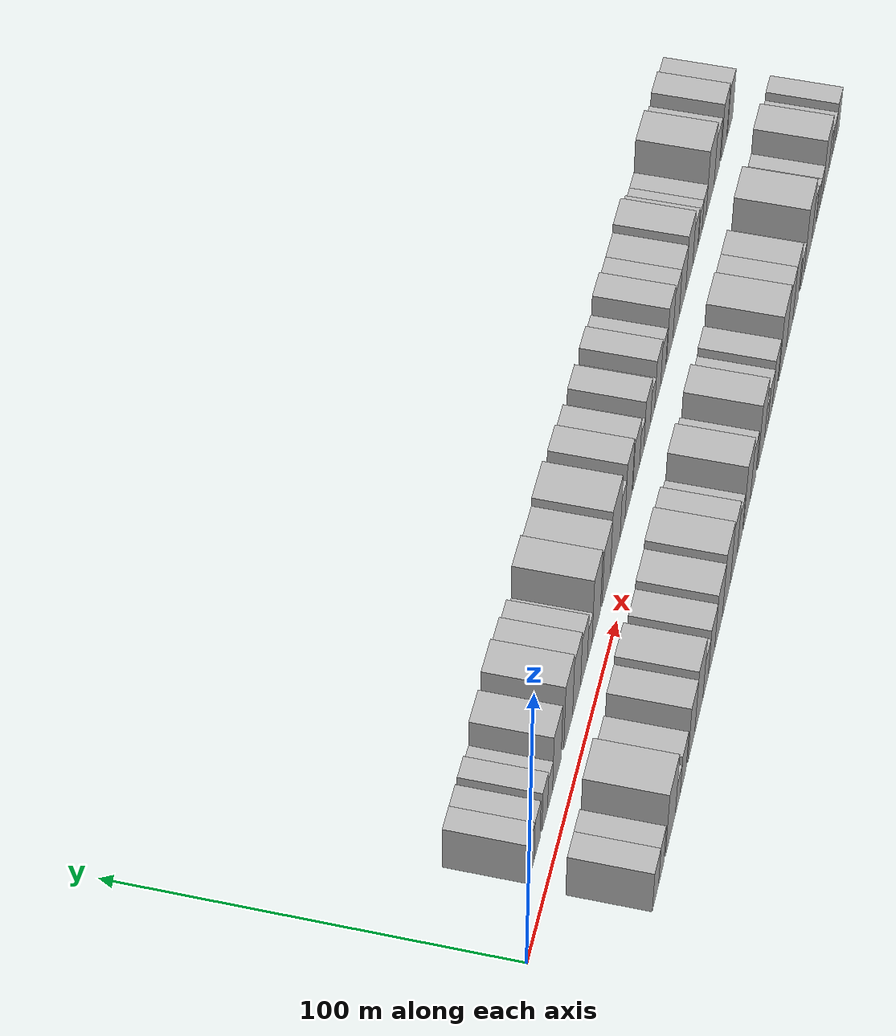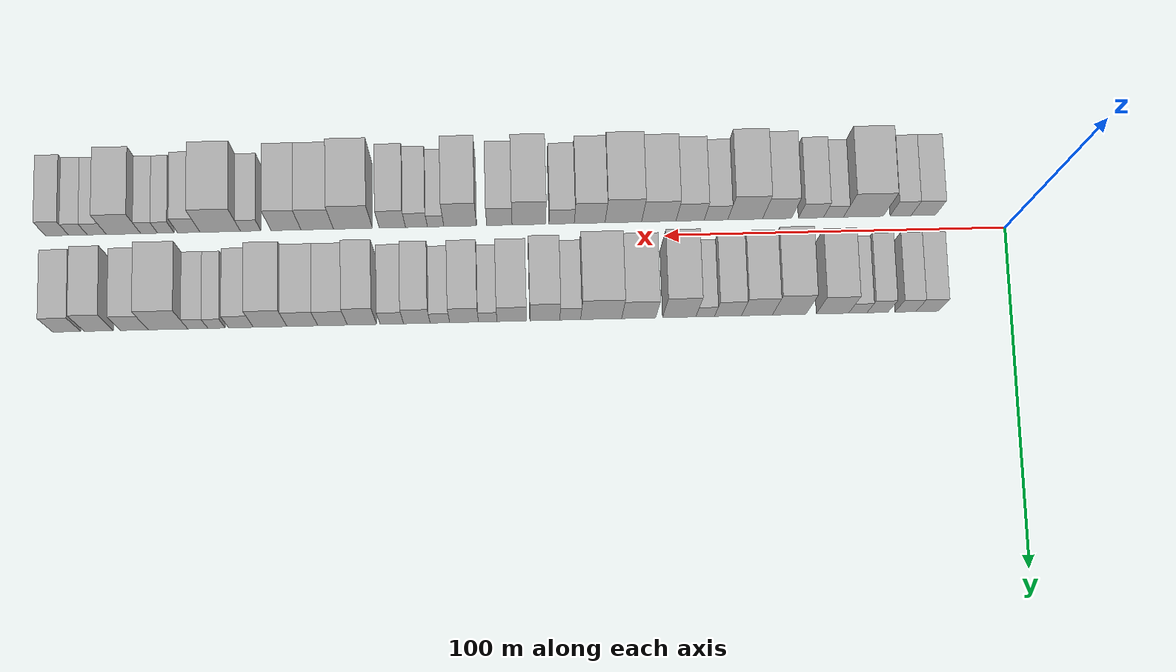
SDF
<sdf version="1.6">
 <world name="default">
  <scene>
   <sky><clouds><speed>12</speed></clouds></sky>
   <ambient>0.4 0.4 0.4 1</ambient>
   <background>0.7 0.7 0.7 1</background>
   <shadows>1</shadows>
  </scene>
  <gravity>0 0 -9.8066</gravity>
  <magnetic_field>6e-06 2.3e-05 -4.2e-05</magnetic_field>
  <physics default="0" name="default_physics" type="ode">
   <ode>
    <solver>
     <type>quick</type>
     <iters>10</iters>
     <sor>1.0</sor>
     <use_dynamic_moi_rescaling>0</use_dynamic_moi_rescaling>
    </solver>
    <constraints>
     <cfm>0</cfm>
     <erp>0.2</erp>
     <contact_max_correcting_vel>100</contact_max_correcting_vel>
     <contact_surface_layer>0.001</contact_surface_layer>
    </constraints>
   </ode>
   <max_step_size>0.004</max_step_size>
   <real_time_factor>1</real_time_factor>
   <real_time_update_rate>250</real_time_update_rate>
  </physics>
  <light name="sun" type="directional">
   <pose>0 0 10 0 0 0</pose>
   <diffuse>0.8 0.8 0.8 1</diffuse>
   <specular>0.2 0.2 0.2 1</specular>
   <attenuation>
    <range>1000</range>
    <constant>0.9</constant>
    <linear>0.01</linear>
    <quadratic>0.001</quadratic>
   </attenuation>
   <direction>-0.5 0.1 -0.9</direction>
  </light>
  <model name="building_1">
   <static>1</static>
   <pose>24.3052 14.5000 0 0.000000 0.000000 1.570796</pose>
   <link name="link">
    <pose>0 0 7.50 0 0 0</pose>
    <collision name="collision"><geometry><box><size>20.0000 6.6104 15.0000</size></box></geometry></collision>
    <visual name="visual">
     <cast_shadows>0</cast_shadows>
     <geometry><box><size>20.0000 6.6104 15.0000</size></box></geometry>
     <material>
      <script>
       <uri>model://HANNAS_wall/materials/scripts</uri>
       <uri>model://HANNAS_wall/materials/textures</uri>
       <name>vrc/HANNAS_wall</name>
      </script>
     </material>
    </visual>
   </link>
  </model>
  <model name="building_2">
   <static>1</static>
   <pose>30.6856 14.5000 0 0.000000 0.000000 1.570796</pose>
   <link name="link">
    <pose>0 0 7.50 0 0 0</pose>
    <collision name="collision"><geometry><box><size>20.0000 6.1504 15.0000</size></box></geometry></collision>
    <visual name="visual">
     <cast_shadows>0</cast_shadows>
     <geometry><box><size>20.0000 6.1504 15.0000</size></box></geometry>
     <material>
      <script>
       <uri>model://HANNAS_wall/materials/scripts</uri>
       <uri>model://HANNAS_wall/materials/textures</uri>
       <name>vrc/HANNAS_wall</name>
      </script>
     </material>
    </visual>
   </link>
  </model>
  <model name="building_3">
   <static>1</static>
   <pose>38.8314 14.5000 0 0.000000 0.000000 1.570796</pose>
   <link name="link">
    <pose>0 0 7.50 0 0 0</pose>
    <collision name="collision"><geometry><box><size>20.0000 6.1412 15.0000</size></box></geometry></collision>
    <visual name="visual">
     <cast_shadows>0</cast_shadows>
     <geometry><box><size>20.0000 6.1412 15.0000</size></box></geometry>
     <material>
      <script>
       <uri>model://HANNAS_wall/materials/scripts</uri>
       <uri>model://HANNAS_wall/materials/textures</uri>
       <name>vrc/HANNAS_wall</name>
      </script>
     </material>
    </visual>
   </link>
  </model>
  <model name="building_4">
   <static>1</static>
   <pose>44.5903 14.5000 0 0.000000 0.000000 1.570796</pose>
   <link name="link">
    <pose>0 0 6.00 0 0 0</pose>
    <collision name="collision"><geometry><box><size>20.0000 5.3766 12.0000</size></box></geometry></collision>
    <visual name="visual">
     <cast_shadows>0</cast_shadows>
     <geometry><box><size>20.0000 5.3766 12.0000</size></box></geometry>
     <material>
      <script>
       <uri>model://HANNAS_wall/materials/scripts</uri>
       <uri>model://HANNAS_wall/materials/textures</uri>
       <name>vrc/HANNAS_wall</name>
      </script>
     </material>
    </visual>
   </link>
  </model>
  <model name="building_5">
   <static>1</static>
   <pose>52.0065 14.5000 0 0.000000 0.000000 1.570796</pose>
   <link name="link">
    <pose>0 0 10.50 0 0 0</pose>
    <collision name="collision"><geometry><box><size>20.0000 9.4559 21.0000</size></box></geometry></collision>
    <visual name="visual">
     <cast_shadows>0</cast_shadows>
     <geometry><box><size>20.0000 9.4559 21.0000</size></box></geometry>
     <material>
      <script>
       <uri>model://HANNAS_wall/materials/scripts</uri>
       <uri>model://HANNAS_wall/materials/textures</uri>
       <name>vrc/HANNAS_wall</name>
      </script>
     </material>
    </visual>
   </link>
  </model>
  <model name="building_6">
   <static>1</static>
   <pose>64.6456 14.5000 0 0.000000 0.000000 1.570796</pose>
   <link name="link">
    <pose>0 0 12.00 0 0 0</pose>
    <collision name="collision"><geometry><box><size>20.0000 9.8222 24.0000</size></box></geometry></collision>
    <visual name="visual">
     <cast_shadows>0</cast_shadows>
     <geometry><box><size>20.0000 9.8222 24.0000</size></box></geometry>
     <material>
      <script>
       <uri>model://HANNAS_wall/materials/scripts</uri>
       <uri>model://HANNAS_wall/materials/textures</uri>
       <name>vrc/HANNAS_wall</name>
      </script>
     </material>
    </visual>
   </link>
  </model>
  <model name="building_7">
   <static>1</static>
   <pose>74.0989 14.5000 0 0.000000 0.000000 1.570796</pose>
   <link name="link">
    <pose>0 0 10.50 0 0 0</pose>
    <collision name="collision"><geometry><box><size>20.0000 9.0845 21.0000</size></box></geometry></collision>
    <visual name="visual">
     <cast_shadows>0</cast_shadows>
     <geometry><box><size>20.0000 9.0845 21.0000</size></box></geometry>
     <material>
      <script>
       <uri>model://HANNAS_wall/materials/scripts</uri>
       <uri>model://HANNAS_wall/materials/textures</uri>
       <name>vrc/HANNAS_wall</name>
      </script>
     </material>
    </visual>
   </link>
  </model>
  <model name="building_8">
   <static>1</static>
   <pose>82.5533 14.5000 0 0.000000 0.000000 1.570796</pose>
   <link name="link">
    <pose>0 0 9.00 0 0 0</pose>
    <collision name="collision"><geometry><box><size>20.0000 7.8243 18.0000</size></box></geometry></collision>
    <visual name="visual">
     <cast_shadows>0</cast_shadows>
     <geometry><box><size>20.0000 7.8243 18.0000</size></box></geometry>
     <material>
      <script>
       <uri>model://HANNAS_wall/materials/scripts</uri>
       <uri>model://HANNAS_wall/materials/textures</uri>
       <name>vrc/HANNAS_wall</name>
      </script>
     </material>
    </visual>
   </link>
  </model>
  <model name="building_9">
   <static>1</static>
   <pose>89.1900 14.5000 0 0.000000 0.000000 1.570796</pose>
   <link name="link">
    <pose>0 0 6.00 0 0 0</pose>
    <collision name="collision"><geometry><box><size>20.0000 5.4490 12.0000</size></box></geometry></collision>
    <visual name="visual">
     <cast_shadows>0</cast_shadows>
     <geometry><box><size>20.0000 5.4490 12.0000</size></box></geometry>
     <material>
      <script>
       <uri>model://HANNAS_wall/materials/scripts</uri>
       <uri>model://HANNAS_wall/materials/textures</uri>
       <name>vrc/HANNAS_wall</name>
      </script>
     </material>
    </visual>
   </link>
  </model>
  <model name="building_10">
   <static>1</static>
   <pose>96.7699 14.5000 0 0.000000 0.000000 1.570796</pose>
   <link name="link">
    <pose>0 0 12.00 0 0 0</pose>
    <collision name="collision"><geometry><box><size>20.0000 9.7109 24.0000</size></box></geometry></collision>
    <visual name="visual">
     <cast_shadows>0</cast_shadows>
     <geometry><box><size>20.0000 9.7109 24.0000</size></box></geometry>
     <material>
      <script>
       <uri>model://HANNAS_wall/materials/scripts</uri>
       <uri>model://HANNAS_wall/materials/textures</uri>
       <name>vrc/HANNAS_wall</name>
      </script>
     </material>
    </visual>
   </link>
  </model>
  <model name="building_11">
   <static>1</static>
   <pose>108.5966 14.5000 0 0.000000 0.000000 1.570796</pose>
   <link name="link">
    <pose>0 0 10.50 0 0 0</pose>
    <collision name="collision"><geometry><box><size>20.0000 9.9426 21.0000</size></box></geometry></collision>
    <visual name="visual">
     <cast_shadows>0</cast_shadows>
     <geometry><box><size>20.0000 9.9426 21.0000</size></box></geometry>
     <material>
      <script>
       <uri>model://HANNAS_wall/materials/scripts</uri>
       <uri>model://HANNAS_wall/materials/textures</uri>
       <name>vrc/HANNAS_wall</name>
      </script>
     </material>
    </visual>
   </link>
  </model>
  <model name="building_12">
   <static>1</static>
   <pose>119.5572 14.5000 0 0.000000 0.000000 1.570796</pose>
   <link name="link">
    <pose>0 0 12.00 0 0 0</pose>
    <collision name="collision"><geometry><box><size>20.0000 11.9786 24.0000</size></box></geometry></collision>
    <visual name="visual">
     <cast_shadows>0</cast_shadows>
     <geometry><box><size>20.0000 11.9786 24.0000</size></box></geometry>
     <material>
      <script>
       <uri>model://HANNAS_wall/materials/scripts</uri>
       <uri>model://HANNAS_wall/materials/textures</uri>
       <name>vrc/HANNAS_wall</name>
      </script>
     </material>
    </visual>
   </link>
  </model>
  <model name="building_13">
   <static>1</static>
   <pose>128.5830 14.5000 0 0.000000 0.000000 1.570796</pose>
   <link name="link">
    <pose>0 0 7.50 0 0 0</pose>
    <collision name="collision"><geometry><box><size>20.0000 6.0729 15.0000</size></box></geometry></collision>
    <visual name="visual">
     <cast_shadows>0</cast_shadows>
     <geometry><box><size>20.0000 6.0729 15.0000</size></box></geometry>
     <material>
      <script>
       <uri>model://HANNAS_wall/materials/scripts</uri>
       <uri>model://HANNAS_wall/materials/textures</uri>
       <name>vrc/HANNAS_wall</name>
      </script>
     </material>
    </visual>
   </link>
  </model>
  <model name="building_14">
   <static>1</static>
   <pose>135.9755 14.5000 0 0.000000 0.000000 1.570796</pose>
   <link name="link">
    <pose>0 0 10.50 0 0 0</pose>
    <collision name="collision"><geometry><box><size>20.0000 8.7121 21.0000</size></box></geometry></collision>
    <visual name="visual">
     <cast_shadows>0</cast_shadows>
     <geometry><box><size>20.0000 8.7121 21.0000</size></box></geometry>
     <material>
      <script>
       <uri>model://HANNAS_wall/materials/scripts</uri>
       <uri>model://HANNAS_wall/materials/textures</uri>
       <name>vrc/HANNAS_wall</name>
      </script>
     </material>
    </visual>
   </link>
  </model>
  <model name="building_15">
   <static>1</static>
   <pose>145.6145 14.5000 0 0.000000 0.000000 1.570796</pose>
   <link name="link">
    <pose>0 0 9.00 0 0 0</pose>
    <collision name="collision"><geometry><box><size>20.0000 8.5658 18.0000</size></box></geometry></collision>
    <visual name="visual">
     <cast_shadows>0</cast_shadows>
     <geometry><box><size>20.0000 8.5658 18.0000</size></box></geometry>
     <material>
      <script>
       <uri>model://HANNAS_wall/materials/scripts</uri>
       <uri>model://HANNAS_wall/materials/textures</uri>
       <name>vrc/HANNAS_wall</name>
      </script>
     </material>
    </visual>
   </link>
  </model>
  <model name="building_16">
   <static>1</static>
   <pose>152.5969 14.5000 0 0.000000 0.000000 1.570796</pose>
   <link name="link">
    <pose>0 0 6.00 0 0 0</pose>
    <collision name="collision"><geometry><box><size>20.0000 5.3992 12.0000</size></box></geometry></collision>
    <visual name="visual">
     <cast_shadows>0</cast_shadows>
     <geometry><box><size>20.0000 5.3992 12.0000</size></box></geometry>
     <material>
      <script>
       <uri>model://HANNAS_wall/materials/scripts</uri>
       <uri>model://HANNAS_wall/materials/textures</uri>
       <name>vrc/HANNAS_wall</name>
      </script>
     </material>
    </visual>
   </link>
  </model>
  <model name="building_17">
   <static>1</static>
   <pose>159.4953 14.5000 0 0.000000 0.000000 1.570796</pose>
   <link name="link">
    <pose>0 0 9.00 0 0 0</pose>
    <collision name="collision"><geometry><box><size>20.0000 8.3975 18.0000</size></box></geometry></collision>
    <visual name="visual">
     <cast_shadows>0</cast_shadows>
     <geometry><box><size>20.0000 8.3975 18.0000</size></box></geometry>
     <material>
      <script>
       <uri>model://HANNAS_wall/materials/scripts</uri>
       <uri>model://HANNAS_wall/materials/textures</uri>
       <name>vrc/HANNAS_wall</name>
      </script>
     </material>
    </visual>
   </link>
  </model>
  <model name="building_18">
   <static>1</static>
   <pose>166.5241 14.5000 0 0.000000 0.000000 1.570796</pose>
   <link name="link">
    <pose>0 0 6.00 0 0 0</pose>
    <collision name="collision"><geometry><box><size>20.0000 5.6603 12.0000</size></box></geometry></collision>
    <visual name="visual">
     <cast_shadows>0</cast_shadows>
     <geometry><box><size>20.0000 5.6603 12.0000</size></box></geometry>
     <material>
      <script>
       <uri>model://HANNAS_wall/materials/scripts</uri>
       <uri>model://HANNAS_wall/materials/textures</uri>
       <name>vrc/HANNAS_wall</name>
      </script>
     </material>
    </visual>
   </link>
  </model>
  <model name="building_19">
   <static>1</static>
   <pose>173.2280 14.5000 0 0.000000 0.000000 1.570796</pose>
   <link name="link">
    <pose>0 0 9.00 0 0 0</pose>
    <collision name="collision"><geometry><box><size>20.0000 7.7474 18.0000</size></box></geometry></collision>
    <visual name="visual">
     <cast_shadows>0</cast_shadows>
     <geometry><box><size>20.0000 7.7474 18.0000</size></box></geometry>
     <material>
      <script>
       <uri>model://HANNAS_wall/materials/scripts</uri>
       <uri>model://HANNAS_wall/materials/textures</uri>
       <name>vrc/HANNAS_wall</name>
      </script>
     </material>
    </visual>
   </link>
  </model>
  <model name="building_20">
   <static>1</static>
   <pose>180.5240 14.5000 0 0.000000 0.000000 1.570796</pose>
   <link name="link">
    <pose>0 0 7.50 0 0 0</pose>
    <collision name="collision"><geometry><box><size>20.0000 6.8446 15.0000</size></box></geometry></collision>
    <visual name="visual">
     <cast_shadows>0</cast_shadows>
     <geometry><box><size>20.0000 6.8446 15.0000</size></box></geometry>
     <material>
      <script>
       <uri>model://HANNAS_wall/materials/scripts</uri>
       <uri>model://HANNAS_wall/materials/textures</uri>
       <name>vrc/HANNAS_wall</name>
      </script>
     </material>
    </visual>
   </link>
  </model>
  <model name="building_21">
   <static>1</static>
   <pose>189.2113 14.5000 0 0.000000 0.000000 1.570796</pose>
   <link name="link">
    <pose>0 0 10.50 0 0 0</pose>
    <collision name="collision"><geometry><box><size>20.0000 8.5298 21.0000</size></box></geometry></collision>
    <visual name="visual">
     <cast_shadows>0</cast_shadows>
     <geometry><box><size>20.0000 8.5298 21.0000</size></box></geometry>
     <material>
      <script>
       <uri>model://HANNAS_wall/materials/scripts</uri>
       <uri>model://HANNAS_wall/materials/textures</uri>
       <name>vrc/HANNAS_wall</name>
      </script>
     </material>
    </visual>
   </link>
  </model>
  <model name="building_22">
   <static>1</static>
   <pose>197.7850 14.5000 0 0.000000 0.000000 1.570796</pose>
   <link name="link">
    <pose>0 0 9.00 0 0 0</pose>
    <collision name="collision"><geometry><box><size>20.0000 8.6177 18.0000</size></box></geometry></collision>
    <visual name="visual">
     <cast_shadows>0</cast_shadows>
     <geometry><box><size>20.0000 8.6177 18.0000</size></box></geometry>
     <material>
      <script>
       <uri>model://HANNAS_wall/materials/scripts</uri>
       <uri>model://HANNAS_wall/materials/textures</uri>
       <name>vrc/HANNAS_wall</name>
      </script>
     </material>
    </visual>
   </link>
  </model>
  <model name="building_23">
   <static>1</static>
   <pose>206.5745 14.5000 0 0.000000 0.000000 1.570796</pose>
   <link name="link">
    <pose>0 0 9.00 0 0 0</pose>
    <collision name="collision"><geometry><box><size>20.0000 8.9612 18.0000</size></box></geometry></collision>
    <visual name="visual">
     <cast_shadows>0</cast_shadows>
     <geometry><box><size>20.0000 8.9612 18.0000</size></box></geometry>
     <material>
      <script>
       <uri>model://HANNAS_wall/materials/scripts</uri>
       <uri>model://HANNAS_wall/materials/textures</uri>
       <name>vrc/HANNAS_wall</name>
      </script>
     </material>
    </visual>
   </link>
  </model>
  <model name="building_24">
   <static>1</static>
   <pose>215.9499 14.5000 0 0.000000 0.000000 1.570796</pose>
   <link name="link">
    <pose>0 0 10.50 0 0 0</pose>
    <collision name="collision"><geometry><box><size>20.0000 9.7897 21.0000</size></box></geometry></collision>
    <visual name="visual">
     <cast_shadows>0</cast_shadows>
     <geometry><box><size>20.0000 9.7897 21.0000</size></box></geometry>
     <material>
      <script>
       <uri>model://HANNAS_wall/materials/scripts</uri>
       <uri>model://HANNAS_wall/materials/textures</uri>
       <name>vrc/HANNAS_wall</name>
      </script>
     </material>
    </visual>
   </link>
  </model>
  <model name="building_25">
   <static>1</static>
   <pose>224.4334 14.5000 0 0.000000 0.000000 1.570796</pose>
   <link name="link">
    <pose>0 0 7.50 0 0 0</pose>
    <collision name="collision"><geometry><box><size>20.0000 7.1772 15.0000</size></box></geometry></collision>
    <visual name="visual">
     <cast_shadows>0</cast_shadows>
     <geometry><box><size>20.0000 7.1772 15.0000</size></box></geometry>
     <material>
      <script>
       <uri>model://HANNAS_wall/materials/scripts</uri>
       <uri>model://HANNAS_wall/materials/textures</uri>
       <name>vrc/HANNAS_wall</name>
      </script>
     </material>
    </visual>
   </link>
  </model>
  <model name="building_26">
   <static>1</static>
   <pose>231.5521 14.5000 0 0.000000 0.000000 1.570796</pose>
   <link name="link">
    <pose>0 0 6.00 0 0 0</pose>
    <collision name="collision"><geometry><box><size>20.0000 5.0602 12.0000</size></box></geometry></collision>
    <visual name="visual">
     <cast_shadows>0</cast_shadows>
     <geometry><box><size>20.0000 5.0602 12.0000</size></box></geometry>
     <material>
      <script>
       <uri>model://HANNAS_wall/materials/scripts</uri>
       <uri>model://HANNAS_wall/materials/textures</uri>
       <name>vrc/HANNAS_wall</name>
      </script>
     </material>
    </visual>
   </link>
  </model>
  <model name="building_27">
   <static>1</static>
   <pose>237.0259 14.5000 0 0.000000 0.000000 1.570796</pose>
   <link name="link">
    <pose>0 0 6.00 0 0 0</pose>
    <collision name="collision"><geometry><box><size>20.0000 5.8875 12.0000</size></box></geometry></collision>
    <visual name="visual">
     <cast_shadows>0</cast_shadows>
     <geometry><box><size>20.0000 5.8875 12.0000</size></box></geometry>
     <material>
      <script>
       <uri>model://HANNAS_wall/materials/scripts</uri>
       <uri>model://HANNAS_wall/materials/textures</uri>
       <name>vrc/HANNAS_wall</name>
      </script>
     </material>
    </visual>
   </link>
  </model>
  <model name="building_28">
   <static>1</static>
   <pose>245.6938 14.5000 0 0.000000 0.000000 1.570796</pose>
   <link name="link">
    <pose>0 0 12.00 0 0 0</pose>
    <collision name="collision"><geometry><box><size>20.0000 11.4482 24.0000</size></box></geometry></collision>
    <visual name="visual">
     <cast_shadows>0</cast_shadows>
     <geometry><box><size>20.0000 11.4482 24.0000</size></box></geometry>
     <material>
      <script>
       <uri>model://HANNAS_wall/materials/scripts</uri>
       <uri>model://HANNAS_wall/materials/textures</uri>
       <name>vrc/HANNAS_wall</name>
      </script>
     </material>
    </visual>
   </link>
  </model>
  <model name="building_29">
   <static>1</static>
   <pose>255.5034 14.5000 0 0.000000 0.000000 1.570796</pose>
   <link name="link">
    <pose>0 0 9.00 0 0 0</pose>
    <collision name="collision"><geometry><box><size>20.0000 8.1710 18.0000</size></box></geometry></collision>
    <visual name="visual">
     <cast_shadows>0</cast_shadows>
     <geometry><box><size>20.0000 8.1710 18.0000</size></box></geometry>
     <material>
      <script>
       <uri>model://HANNAS_wall/materials/scripts</uri>
       <uri>model://HANNAS_wall/materials/textures</uri>
       <name>vrc/HANNAS_wall</name>
      </script>
     </material>
    </visual>
   </link>
  </model>
  <model name="building_30">
   <static>1</static>
   <pose>265.8382 14.5000 0 0.000000 0.000000 1.570796</pose>
   <link name="link">
    <pose>0 0 10.50 0 0 0</pose>
    <collision name="collision"><geometry><box><size>20.0000 8.4984 21.0000</size></box></geometry></collision>
    <visual name="visual">
     <cast_shadows>0</cast_shadows>
     <geometry><box><size>20.0000 8.4984 21.0000</size></box></geometry>
     <material>
      <script>
       <uri>model://HANNAS_wall/materials/scripts</uri>
       <uri>model://HANNAS_wall/materials/textures</uri>
       <name>vrc/HANNAS_wall</name>
      </script>
     </material>
    </visual>
   </link>
  </model>
  <model name="building_31">
   <static>1</static>
   <pose>275.1701 14.5000 0 0.000000 0.000000 1.570796</pose>
   <link name="link">
    <pose>0 0 9.00 0 0 0</pose>
    <collision name="collision"><geometry><box><size>20.0000 8.1655 18.0000</size></box></geometry></collision>
    <visual name="visual">
     <cast_shadows>0</cast_shadows>
     <geometry><box><size>20.0000 8.1655 18.0000</size></box></geometry>
     <material>
      <script>
       <uri>model://HANNAS_wall/materials/scripts</uri>
       <uri>model://HANNAS_wall/materials/textures</uri>
       <name>vrc/HANNAS_wall</name>
      </script>
     </material>
    </visual>
   </link>
  </model>
  <model name="building_32">
   <static>1</static>
   <pose>23.6122 -14.5000 0 0.000000 0.000000 1.570796</pose>
   <link name="link">
    <pose>0 0 7.50 0 0 0</pose>
    <collision name="collision"><geometry><box><size>20.0000 7.2245 15.0000</size></box></geometry></collision>
    <visual name="visual">
     <cast_shadows>0</cast_shadows>
     <geometry><box><size>20.0000 7.2245 15.0000</size></box></geometry>
     <material>
      <script>
       <uri>model://HANNAS_wall/materials/scripts</uri>
       <uri>model://HANNAS_wall/materials/textures</uri>
       <name>vrc/HANNAS_wall</name>
      </script>
     </material>
    </visual>
   </link>
  </model>
  <model name="building_33">
   <static>1</static>
   <pose>30.3431 -14.5000 0 0.000000 0.000000 1.570796</pose>
   <link name="link">
    <pose>0 0 7.50 0 0 0</pose>
    <collision name="collision"><geometry><box><size>20.0000 6.2373 15.0000</size></box></geometry></collision>
    <visual name="visual">
     <cast_shadows>0</cast_shadows>
     <geometry><box><size>20.0000 6.2373 15.0000</size></box></geometry>
     <material>
      <script>
       <uri>model://HANNAS_wall/materials/scripts</uri>
       <uri>model://HANNAS_wall/materials/textures</uri>
       <name>vrc/HANNAS_wall</name>
      </script>
     </material>
    </visual>
   </link>
  </model>
  <model name="building_34">
   <static>1</static>
   <pose>41.3250 -14.5000 0 0.000000 0.000000 1.570796</pose>
   <link name="link">
    <pose>0 0 12.00 0 0 0</pose>
    <collision name="collision"><geometry><box><size>20.0000 11.7266 24.0000</size></box></geometry></collision>
    <visual name="visual">
     <cast_shadows>0</cast_shadows>
     <geometry><box><size>20.0000 11.7266 24.0000</size></box></geometry>
     <material>
      <script>
       <uri>model://HANNAS_wall/materials/scripts</uri>
       <uri>model://HANNAS_wall/materials/textures</uri>
       <name>vrc/HANNAS_wall</name>
      </script>
     </material>
    </visual>
   </link>
  </model>
  <model name="building_35">
   <static>1</static>
   <pose>50.1427 -14.5000 0 0.000000 0.000000 1.570796</pose>
   <link name="link">
    <pose>0 0 6.00 0 0 0</pose>
    <collision name="collision"><geometry><box><size>20.0000 5.9087 12.0000</size></box></geometry></collision>
    <visual name="visual">
     <cast_shadows>0</cast_shadows>
     <geometry><box><size>20.0000 5.9087 12.0000</size></box></geometry>
     <material>
      <script>
       <uri>model://HANNAS_wall/materials/scripts</uri>
       <uri>model://HANNAS_wall/materials/textures</uri>
       <name>vrc/HANNAS_wall</name>
      </script>
     </material>
    </visual>
   </link>
  </model>
  <model name="building_36">
   <static>1</static>
   <pose>56.8025 -14.5000 0 0.000000 0.000000 1.570796</pose>
   <link name="link">
    <pose>0 0 7.50 0 0 0</pose>
    <collision name="collision"><geometry><box><size>20.0000 7.4109 15.0000</size></box></geometry></collision>
    <visual name="visual">
     <cast_shadows>0</cast_shadows>
     <geometry><box><size>20.0000 7.4109 15.0000</size></box></geometry>
     <material>
      <script>
       <uri>model://HANNAS_wall/materials/scripts</uri>
       <uri>model://HANNAS_wall/materials/textures</uri>
       <name>vrc/HANNAS_wall</name>
      </script>
     </material>
    </visual>
   </link>
  </model>
  <model name="building_37">
   <static>1</static>
   <pose>66.8103 -14.5000 0 0.000000 0.000000 1.570796</pose>
   <link name="link">
    <pose>0 0 10.50 0 0 0</pose>
    <collision name="collision"><geometry><box><size>20.0000 8.6046 21.0000</size></box></geometry></collision>
    <visual name="visual">
     <cast_shadows>0</cast_shadows>
     <geometry><box><size>20.0000 8.6046 21.0000</size></box></geometry>
     <material>
      <script>
       <uri>model://HANNAS_wall/materials/scripts</uri>
       <uri>model://HANNAS_wall/materials/textures</uri>
       <name>vrc/HANNAS_wall</name>
      </script>
     </material>
    </visual>
   </link>
  </model>
  <model name="building_38">
   <static>1</static>
   <pose>76.2327 -14.5000 0 0.000000 0.000000 1.570796</pose>
   <link name="link">
    <pose>0 0 12.00 0 0 0</pose>
    <collision name="collision"><geometry><box><size>20.0000 10.2402 24.0000</size></box></geometry></collision>
    <visual name="visual">
     <cast_shadows>0</cast_shadows>
     <geometry><box><size>20.0000 10.2402 24.0000</size></box></geometry>
     <material>
      <script>
       <uri>model://HANNAS_wall/materials/scripts</uri>
       <uri>model://HANNAS_wall/materials/textures</uri>
       <name>vrc/HANNAS_wall</name>
      </script>
     </material>
    </visual>
   </link>
  </model>
  <model name="building_39">
   <static>1</static>
   <pose>84.8181 -14.5000 0 0.000000 0.000000 1.570796</pose>
   <link name="link">
    <pose>0 0 7.50 0 0 0</pose>
    <collision name="collision"><geometry><box><size>20.0000 6.9306 15.0000</size></box></geometry></collision>
    <visual name="visual">
     <cast_shadows>0</cast_shadows>
     <geometry><box><size>20.0000 6.9306 15.0000</size></box></geometry>
     <material>
      <script>
       <uri>model://HANNAS_wall/materials/scripts</uri>
       <uri>model://HANNAS_wall/materials/textures</uri>
       <name>vrc/HANNAS_wall</name>
      </script>
     </material>
    </visual>
   </link>
  </model>
  <model name="building_40">
   <static>1</static>
   <pose>92.4422 -14.5000 0 0.000000 0.000000 1.570796</pose>
   <link name="link">
    <pose>0 0 9.00 0 0 0</pose>
    <collision name="collision"><geometry><box><size>20.0000 8.3176 18.0000</size></box></geometry></collision>
    <visual name="visual">
     <cast_shadows>0</cast_shadows>
     <geometry><box><size>20.0000 8.3176 18.0000</size></box></geometry>
     <material>
      <script>
       <uri>model://HANNAS_wall/materials/scripts</uri>
       <uri>model://HANNAS_wall/materials/textures</uri>
       <name>vrc/HANNAS_wall</name>
      </script>
     </material>
    </visual>
   </link>
  </model>
  <model name="building_41">
   <static>1</static>
   <pose>101.6621 -14.5000 0 0.000000 0.000000 1.570796</pose>
   <link name="link">
    <pose>0 0 10.50 0 0 0</pose>
    <collision name="collision"><geometry><box><size>20.0000 10.1222 21.0000</size></box></geometry></collision>
    <visual name="visual">
     <cast_shadows>0</cast_shadows>
     <geometry><box><size>20.0000 10.1222 21.0000</size></box></geometry>
     <material>
      <script>
       <uri>model://HANNAS_wall/materials/scripts</uri>
       <uri>model://HANNAS_wall/materials/textures</uri>
       <name>vrc/HANNAS_wall</name>
      </script>
     </material>
    </visual>
   </link>
  </model>
  <model name="building_42">
   <static>1</static>
   <pose>112.1019 -14.5000 0 0.000000 0.000000 1.570796</pose>
   <link name="link">
    <pose>0 0 12.00 0 0 0</pose>
    <collision name="collision"><geometry><box><size>20.0000 10.7576 24.0000</size></box></geometry></collision>
    <visual name="visual">
     <cast_shadows>0</cast_shadows>
     <geometry><box><size>20.0000 10.7576 24.0000</size></box></geometry>
     <material>
      <script>
       <uri>model://HANNAS_wall/materials/scripts</uri>
       <uri>model://HANNAS_wall/materials/textures</uri>
       <name>vrc/HANNAS_wall</name>
      </script>
     </material>
    </visual>
   </link>
  </model>
  <model name="building_43">
   <static>1</static>
   <pose>122.0251 -14.5000 0 0.000000 0.000000 1.570796</pose>
   <link name="link">
    <pose>0 0 10.50 0 0 0</pose>
    <collision name="collision"><geometry><box><size>20.0000 9.0887 21.0000</size></box></geometry></collision>
    <visual name="visual">
     <cast_shadows>0</cast_shadows>
     <geometry><box><size>20.0000 9.0887 21.0000</size></box></geometry>
     <material>
      <script>
       <uri>model://HANNAS_wall/materials/scripts</uri>
       <uri>model://HANNAS_wall/materials/textures</uri>
       <name>vrc/HANNAS_wall</name>
      </script>
     </material>
    </visual>
   </link>
  </model>
  <model name="building_44">
   <static>1</static>
   <pose>130.2806 -14.5000 0 0.000000 0.000000 1.570796</pose>
   <link name="link">
    <pose>0 0 7.50 0 0 0</pose>
    <collision name="collision"><geometry><box><size>20.0000 7.4224 15.0000</size></box></geometry></collision>
    <visual name="visual">
     <cast_shadows>0</cast_shadows>
     <geometry><box><size>20.0000 7.4224 15.0000</size></box></geometry>
     <material>
      <script>
       <uri>model://HANNAS_wall/materials/scripts</uri>
       <uri>model://HANNAS_wall/materials/textures</uri>
       <name>vrc/HANNAS_wall</name>
      </script>
     </material>
    </visual>
   </link>
  </model>
  <model name="building_45">
   <static>1</static>
   <pose>139.9253 -14.5000 0 0.000000 0.000000 1.570796</pose>
   <link name="link">
    <pose>0 0 12.00 0 0 0</pose>
    <collision name="collision"><geometry><box><size>20.0000 9.8670 24.0000</size></box></geometry></collision>
    <visual name="visual">
     <cast_shadows>0</cast_shadows>
     <geometry><box><size>20.0000 9.8670 24.0000</size></box></geometry>
     <material>
      <script>
       <uri>model://HANNAS_wall/materials/scripts</uri>
       <uri>model://HANNAS_wall/materials/textures</uri>
       <name>vrc/HANNAS_wall</name>
      </script>
     </material>
    </visual>
   </link>
  </model>
  <model name="building_46">
   <static>1</static>
   <pose>148.5856 -14.5000 0 0.000000 0.000000 1.570796</pose>
   <link name="link">
    <pose>0 0 9.00 0 0 0</pose>
    <collision name="collision"><geometry><box><size>20.0000 7.4535 18.0000</size></box></geometry></collision>
    <visual name="visual">
     <cast_shadows>0</cast_shadows>
     <geometry><box><size>20.0000 7.4535 18.0000</size></box></geometry>
     <material>
      <script>
       <uri>model://HANNAS_wall/materials/scripts</uri>
       <uri>model://HANNAS_wall/materials/textures</uri>
       <name>vrc/HANNAS_wall</name>
      </script>
     </material>
    </visual>
   </link>
  </model>
  <model name="building_47">
   <static>1</static>
   <pose>160.1193 -14.5000 0 0.000000 0.000000 1.570796</pose>
   <link name="link">
    <pose>0 0 12.00 0 0 0</pose>
    <collision name="collision"><geometry><box><size>20.0000 9.6139 24.0000</size></box></geometry></collision>
    <visual name="visual">
     <cast_shadows>0</cast_shadows>
     <geometry><box><size>20.0000 9.6139 24.0000</size></box></geometry>
     <material>
      <script>
       <uri>model://HANNAS_wall/materials/scripts</uri>
       <uri>model://HANNAS_wall/materials/textures</uri>
       <name>vrc/HANNAS_wall</name>
      </script>
     </material>
    </visual>
   </link>
  </model>
  <model name="building_48">
   <static>1</static>
   <pose>167.3458 -14.5000 0 0.000000 0.000000 1.570796</pose>
   <link name="link">
    <pose>0 0 6.00 0 0 0</pose>
    <collision name="collision"><geometry><box><size>20.0000 4.8391 12.0000</size></box></geometry></collision>
    <visual name="visual">
     <cast_shadows>0</cast_shadows>
     <geometry><box><size>20.0000 4.8391 12.0000</size></box></geometry>
     <material>
      <script>
       <uri>model://HANNAS_wall/materials/scripts</uri>
       <uri>model://HANNAS_wall/materials/textures</uri>
       <name>vrc/HANNAS_wall</name>
      </script>
     </material>
    </visual>
   </link>
  </model>
  <model name="building_49">
   <static>1</static>
   <pose>172.9753 -14.5000 0 0.000000 0.000000 1.570796</pose>
   <link name="link">
    <pose>0 0 7.50 0 0 0</pose>
    <collision name="collision"><geometry><box><size>20.0000 6.4200 15.0000</size></box></geometry></collision>
    <visual name="visual">
     <cast_shadows>0</cast_shadows>
     <geometry><box><size>20.0000 6.4200 15.0000</size></box></geometry>
     <material>
      <script>
       <uri>model://HANNAS_wall/materials/scripts</uri>
       <uri>model://HANNAS_wall/materials/textures</uri>
       <name>vrc/HANNAS_wall</name>
      </script>
     </material>
    </visual>
   </link>
  </model>
  <model name="building_50">
   <static>1</static>
   <pose>180.0564 -14.5000 0 0.000000 0.000000 1.570796</pose>
   <link name="link">
    <pose>0 0 9.00 0 0 0</pose>
    <collision name="collision"><geometry><box><size>20.0000 7.7422 18.0000</size></box></geometry></collision>
    <visual name="visual">
     <cast_shadows>0</cast_shadows>
     <geometry><box><size>20.0000 7.7422 18.0000</size></box></geometry>
     <material>
      <script>
       <uri>model://HANNAS_wall/materials/scripts</uri>
       <uri>model://HANNAS_wall/materials/textures</uri>
       <name>vrc/HANNAS_wall</name>
      </script>
     </material>
    </visual>
   </link>
  </model>
  <model name="building_51">
   <static>1</static>
   <pose>191.6581 -14.5000 0 0.000000 0.000000 1.570796</pose>
   <link name="link">
    <pose>0 0 12.00 0 0 0</pose>
    <collision name="collision"><geometry><box><size>20.0000 11.4613 24.0000</size></box></geometry></collision>
    <visual name="visual">
     <cast_shadows>0</cast_shadows>
     <geometry><box><size>20.0000 11.4613 24.0000</size></box></geometry>
     <material>
      <script>
       <uri>model://HANNAS_wall/materials/scripts</uri>
       <uri>model://HANNAS_wall/materials/textures</uri>
       <name>vrc/HANNAS_wall</name>
      </script>
     </material>
    </visual>
   </link>
  </model>
  <model name="building_52">
   <static>1</static>
   <pose>202.1653 -14.5000 0 0.000000 0.000000 1.570796</pose>
   <link name="link">
    <pose>0 0 10.50 0 0 0</pose>
    <collision name="collision"><geometry><box><size>20.0000 9.5530 21.0000</size></box></geometry></collision>
    <visual name="visual">
     <cast_shadows>0</cast_shadows>
     <geometry><box><size>20.0000 9.5530 21.0000</size></box></geometry>
     <material>
      <script>
       <uri>model://HANNAS_wall/materials/scripts</uri>
       <uri>model://HANNAS_wall/materials/textures</uri>
       <name>vrc/HANNAS_wall</name>
      </script>
     </material>
    </visual>
   </link>
  </model>
  <model name="building_53">
   <static>1</static>
   <pose>211.3475 -14.5000 0 0.000000 0.000000 1.570796</pose>
   <link name="link">
    <pose>0 0 10.50 0 0 0</pose>
    <collision name="collision"><geometry><box><size>20.0000 8.8114 21.0000</size></box></geometry></collision>
    <visual name="visual">
     <cast_shadows>0</cast_shadows>
     <geometry><box><size>20.0000 8.8114 21.0000</size></box></geometry>
     <material>
      <script>
       <uri>model://HANNAS_wall/materials/scripts</uri>
       <uri>model://HANNAS_wall/materials/textures</uri>
       <name>vrc/HANNAS_wall</name>
      </script>
     </material>
    </visual>
   </link>
  </model>
  <model name="building_54">
   <static>1</static>
   <pose>221.7446 -14.5000 0 0.000000 0.000000 1.570796</pose>
   <link name="link">
    <pose>0 0 6.00 0 0 0</pose>
    <collision name="collision"><geometry><box><size>20.0000 5.9828 12.0000</size></box></geometry></collision>
    <visual name="visual">
     <cast_shadows>0</cast_shadows>
     <geometry><box><size>20.0000 5.9828 12.0000</size></box></geometry>
     <material>
      <script>
       <uri>model://HANNAS_wall/materials/scripts</uri>
       <uri>model://HANNAS_wall/materials/textures</uri>
       <name>vrc/HANNAS_wall</name>
      </script>
     </material>
    </visual>
   </link>
  </model>
  <model name="building_55">
   <static>1</static>
   <pose>230.6749 -14.5000 0 0.000000 0.000000 1.570796</pose>
   <link name="link">
    <pose>0 0 12.00 0 0 0</pose>
    <collision name="collision"><geometry><box><size>20.0000 11.8777 24.0000</size></box></geometry></collision>
    <visual name="visual">
     <cast_shadows>0</cast_shadows>
     <geometry><box><size>20.0000 11.8777 24.0000</size></box></geometry>
     <material>
      <script>
       <uri>model://HANNAS_wall/materials/scripts</uri>
       <uri>model://HANNAS_wall/materials/textures</uri>
       <name>vrc/HANNAS_wall</name>
      </script>
     </material>
    </visual>
   </link>
  </model>
  <model name="building_56">
   <static>1</static>
   <pose>239.9176 -14.5000 0 0.000000 0.000000 1.570796</pose>
   <link name="link">
    <pose>0 0 7.50 0 0 0</pose>
    <collision name="collision"><geometry><box><size>20.0000 6.6077 15.0000</size></box></geometry></collision>
    <visual name="visual">
     <cast_shadows>0</cast_shadows>
     <geometry><box><size>20.0000 6.6077 15.0000</size></box></geometry>
     <material>
      <script>
       <uri>model://HANNAS_wall/materials/scripts</uri>
       <uri>model://HANNAS_wall/materials/textures</uri>
       <name>vrc/HANNAS_wall</name>
      </script>
     </material>
    </visual>
   </link>
  </model>
  <model name="building_57">
   <static>1</static>
   <pose>246.6359 -14.5000 0 0.000000 0.000000 1.570796</pose>
   <link name="link">
    <pose>0 0 6.00 0 0 0</pose>
    <collision name="collision"><geometry><box><size>20.0000 4.8288 12.0000</size></box></geometry></collision>
    <visual name="visual">
     <cast_shadows>0</cast_shadows>
     <geometry><box><size>20.0000 4.8288 12.0000</size></box></geometry>
     <material>
      <script>
       <uri>model://HANNAS_wall/materials/scripts</uri>
       <uri>model://HANNAS_wall/materials/textures</uri>
       <name>vrc/HANNAS_wall</name>
      </script>
     </material>
    </visual>
   </link>
  </model>
  <model name="building_58">
   <static>1</static>
   <pose>251.5551 -14.5000 0 0.000000 0.000000 1.570796</pose>
   <link name="link">
    <pose>0 0 6.00 0 0 0</pose>
    <collision name="collision"><geometry><box><size>20.0000 5.0096 12.0000</size></box></geometry></collision>
    <visual name="visual">
     <cast_shadows>0</cast_shadows>
     <geometry><box><size>20.0000 5.0096 12.0000</size></box></geometry>
     <material>
      <script>
       <uri>model://HANNAS_wall/materials/scripts</uri>
       <uri>model://HANNAS_wall/materials/textures</uri>
       <name>vrc/HANNAS_wall</name>
      </script>
     </material>
    </visual>
   </link>
  </model>
  <model name="building_59">
   <static>1</static>
   <pose>259.1018 -14.5000 0 0.000000 0.000000 1.570796</pose>
   <link name="link">
    <pose>0 0 10.50 0 0 0</pose>
    <collision name="collision"><geometry><box><size>20.0000 10.0839 21.0000</size></box></geometry></collision>
    <visual name="visual">
     <cast_shadows>0</cast_shadows>
     <geometry><box><size>20.0000 10.0839 21.0000</size></box></geometry>
     <material>
      <script>
       <uri>model://HANNAS_wall/materials/scripts</uri>
       <uri>model://HANNAS_wall/materials/textures</uri>
       <name>vrc/HANNAS_wall</name>
      </script>
     </material>
    </visual>
   </link>
  </model>
  <model name="building_60">
   <static>1</static>
   <pose>266.9435 -14.5000 0 0.000000 0.000000 1.570796</pose>
   <link name="link">
    <pose>0 0 6.00 0 0 0</pose>
    <collision name="collision"><geometry><box><size>20.0000 5.5995 12.0000</size></box></geometry></collision>
    <visual name="visual">
     <cast_shadows>0</cast_shadows>
     <geometry><box><size>20.0000 5.5995 12.0000</size></box></geometry>
     <material>
      <script>
       <uri>model://HANNAS_wall/materials/scripts</uri>
       <uri>model://HANNAS_wall/materials/textures</uri>
       <name>vrc/HANNAS_wall</name>
      </script>
     </material>
    </visual>
   </link>
  </model>
  <model name="building_61">
   <static>1</static>
   <pose>272.4542 -14.5000 0 0.000000 0.000000 1.570796</pose>
   <link name="link">
    <pose>0 0 6.00 0 0 0</pose>
    <collision name="collision"><geometry><box><size>20.0000 5.4219 12.0000</size></box></geometry></collision>
    <visual name="visual">
     <cast_shadows>0</cast_shadows>
     <geometry><box><size>20.0000 5.4219 12.0000</size></box></geometry>
     <material>
      <script>
       <uri>model://HANNAS_wall/materials/scripts</uri>
       <uri>model://HANNAS_wall/materials/textures</uri>
       <name>vrc/HANNAS_wall</name>
      </script>
     </material>
    </visual>
   </link>
  </model>
  <model name="building_62">
   <static>1</static>
   <pose>278.5400 -14.5000 0 0.000000 0.000000 1.570796</pose>
   <link name="link">
    <pose>0 0 7.50 0 0 0</pose>
    <collision name="collision"><geometry><box><size>20.0000 6.7498 15.0000</size></box></geometry></collision>
    <visual name="visual">
     <cast_shadows>0</cast_shadows>
     <geometry><box><size>20.0000 6.7498 15.0000</size></box></geometry>
     <material>
      <script>
       <uri>model://HANNAS_wall/materials/scripts</uri>
       <uri>model://HANNAS_wall/materials/textures</uri>
       <name>vrc/HANNAS_wall</name>
      </script>
     </material>
    </visual>
   </link>
  </model>
 </world>
</sdf>
